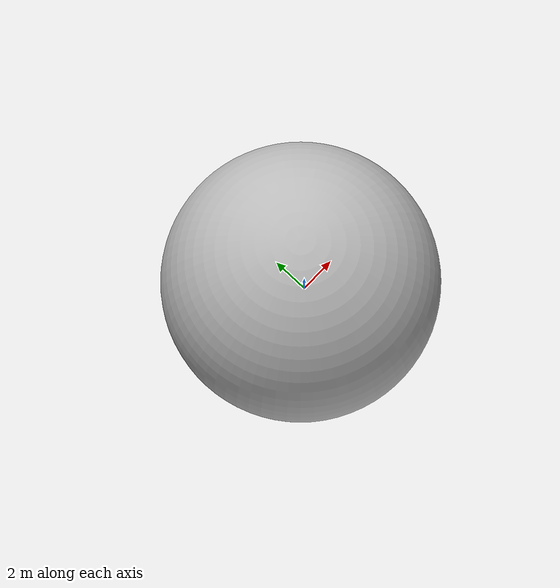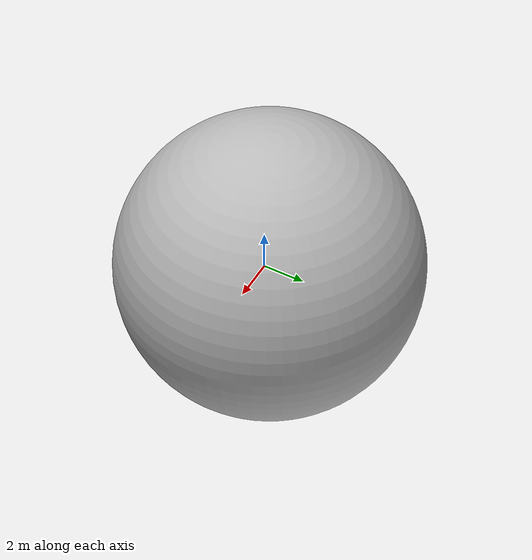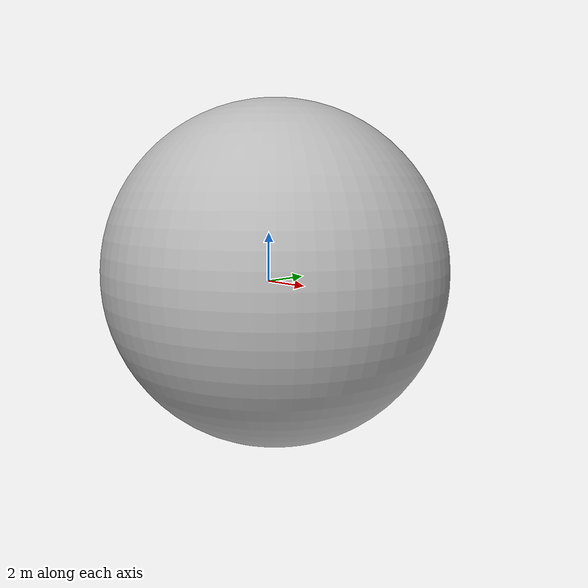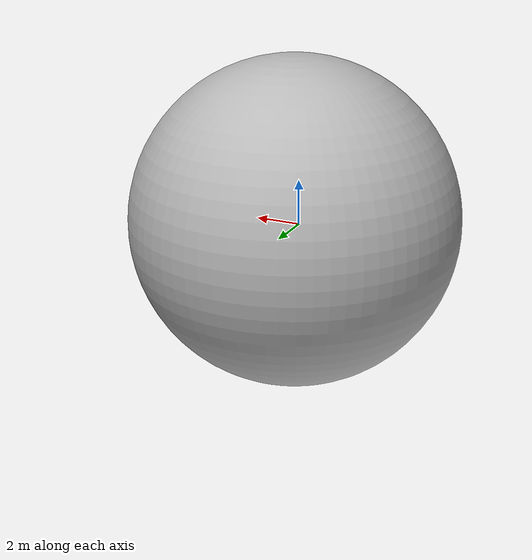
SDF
<?xml version="1.0" ?>
<sdf version="1.6">
  <model name="Earth">
    <static>true</static>
    <link name="link">
      <visual name="visual">
        <geometry>
          <mesh>
            <scale>1 1 1</scale>
            <uri>model://Earth/meshes/Earth.obj</uri>
          </mesh>
        </geometry>
      </visual>
    </link>
  </model>
</sdf>
